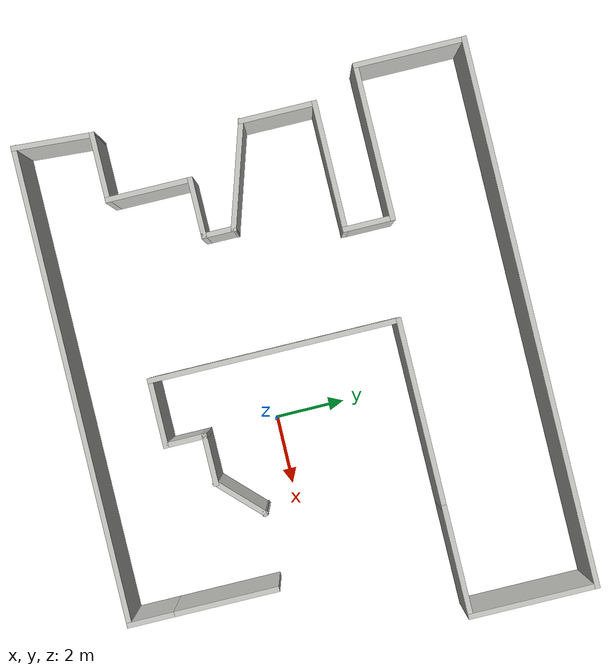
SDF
<?xml version='1.0'?>
<sdf version='1.7'>
  <model name='my_own_map_v3'>
    <pose>-1.27246 1.16254 0 0 -0 0</pose>
    <link name='Wall_0'>
      <collision name='Wall_0_Collision'>
        <geometry>
          <box>
            <size>1.5 0.15 2.5</size>
          </box>
        </geometry>
        <pose>0 0 1.25 0 -0 0</pose>
      </collision>
      <visual name='Wall_0_Visual'>
        <pose>0 0 1.25 0 -0 0</pose>
        <geometry>
          <box>
            <size>1.5 0.15 2.5</size>
          </box>
        </geometry>
        <material>
          <script>
            <uri>file://media/materials/scripts/gazebo.material</uri>
            <name>Gazebo/CeilingTiled</name>
          </script>
          <ambient>1 1 1 1</ambient>
        </material>
        <meta>
          <layer>0</layer>
        </meta>
      </visual>
      <pose>1.87499 -3.167 0 0 -0 0</pose>
    </link>
    <link name='Wall_12'>
      <collision name='Wall_12_Collision'>
        <geometry>
          <box>
            <size>15.75 0.15 2.5</size>
          </box>
        </geometry>
        <pose>0 0 1.25 0 -0 0</pose>
      </collision>
      <visual name='Wall_12_Visual'>
        <pose>0 0 1.25 0 -0 0</pose>
        <geometry>
          <box>
            <size>15.75 0.15 2.5</size>
          </box>
        </geometry>
        <material>
          <script>
            <uri>file://media/materials/scripts/gazebo.material</uri>
            <name>Gazebo/CeilingTiled</name>
          </script>
          <ambient>1 1 1 1</ambient>
        </material>
        <meta>
          <layer>0</layer>
        </meta>
      </visual>
      <pose>0.002464 6.42746 0 0 -0 0</pose>
    </link>
    <link name='Wall_13'>
      <collision name='Wall_13_Collision'>
        <geometry>
          <box>
            <size>3.75 0.15 2.5</size>
          </box>
        </geometry>
        <pose>0 0 1.25 0 -0 0</pose>
      </collision>
      <visual name='Wall_13_Visual'>
        <pose>0 0 1.25 0 -0 0</pose>
        <geometry>
          <box>
            <size>3.75 0.15 2.5</size>
          </box>
        </geometry>
        <material>
          <script>
            <uri>file://media/materials/scripts/gazebo.material</uri>
            <name>Gazebo/CeilingTiled</name>
          </script>
          <ambient>1 1 1 1</ambient>
        </material>
        <meta>
          <layer>0</layer>
        </meta>
      </visual>
      <pose>7.80246 4.62746 0 0 -0 -1.5708</pose>
    </link>
    <link name='Wall_14'>
      <collision name='Wall_14_Collision'>
        <geometry>
          <box>
            <size>3.25 0.15 2.5</size>
          </box>
        </geometry>
        <pose>0 0 1.25 0 -0 0</pose>
      </collision>
      <visual name='Wall_14_Visual'>
        <pose>0 0 1.25 0 -0 0</pose>
        <geometry>
          <box>
            <size>3.25 0.15 2.5</size>
          </box>
        </geometry>
        <material>
          <script>
            <uri>file://media/materials/scripts/gazebo.material</uri>
            <name>Gazebo/CeilingTiled</name>
          </script>
          <ambient>1 1 1 1</ambient>
        </material>
        <meta>
          <layer>0</layer>
        </meta>
      </visual>
      <pose>6.25246 2.82746 0 0 -0 3.14159</pose>
    </link>
    <link name='Wall_15'>
      <collision name='Wall_15_Collision'>
        <geometry>
          <box>
            <size>5.5 0.15 2.5</size>
          </box>
        </geometry>
        <pose>0 0 1.25 0 -0 0</pose>
      </collision>
      <visual name='Wall_15_Visual'>
        <pose>0 0 1.25 0 -0 0</pose>
        <geometry>
          <box>
            <size>5.5 0.15 2.5</size>
          </box>
        </geometry>
        <material>
          <script>
            <uri>file://media/materials/scripts/gazebo.material</uri>
            <name>Gazebo/CeilingTiled</name>
          </script>
          <ambient>1 1 1 1</ambient>
        </material>
        <meta>
          <layer>0</layer>
        </meta>
      </visual>
      <pose>2.02746 2.82746 0 0 -0 3.14159</pose>
    </link>
    <link name='Wall_16'>
      <collision name='Wall_16_Collision'>
        <geometry>
          <box>
            <size>7.25 0.15 2.5</size>
          </box>
        </geometry>
        <pose>0 0 1.25 0 -0 0</pose>
      </collision>
      <visual name='Wall_16_Visual'>
        <pose>0 0 1.25 0 -0 0</pose>
        <geometry>
          <box>
            <size>7.25 0.15 2.5</size>
          </box>
        </geometry>
        <material>
          <script>
            <uri>file://media/materials/scripts/gazebo.material</uri>
            <name>Gazebo/CeilingTiled</name>
          </script>
          <ambient>1 1 1 1</ambient>
        </material>
        <meta>
          <layer>0</layer>
        </meta>
      </visual>
      <pose>-0.647536 -0.722536 0 0 -0 -1.5708</pose>
    </link>
    <link name='Wall_17'>
      <collision name='Wall_17_Collision'>
        <geometry>
          <box>
            <size>2 0.15 2.5</size>
          </box>
        </geometry>
        <pose>0 0 1.25 0 -0 0</pose>
      </collision>
      <visual name='Wall_17_Visual'>
        <pose>0 0 1.25 0 -0 0</pose>
        <geometry>
          <box>
            <size>2 0.15 2.5</size>
          </box>
        </geometry>
        <material>
          <script>
            <uri>file://media/materials/scripts/gazebo.material</uri>
            <name>Gazebo/CeilingTiled</name>
          </script>
          <ambient>1 1 1 1</ambient>
        </material>
        <meta>
          <layer>0</layer>
        </meta>
      </visual>
      <pose>0.277464 -4.27254 0 0 -0 0</pose>
    </link>
    <link name='Wall_18'>
      <collision name='Wall_18_Collision'>
        <geometry>
          <box>
            <size>1.25617 0.15 2.5</size>
          </box>
        </geometry>
        <pose>0 0 1.25 0 -0 0</pose>
      </collision>
      <visual name='Wall_18_Visual'>
        <pose>0 0 1.25 0 -0 0</pose>
        <geometry>
          <box>
            <size>1.25617 0.15 2.5</size>
          </box>
        </geometry>
        <material>
          <script>
            <uri>file://media/materials/scripts/gazebo.material</uri>
            <name>Gazebo/CeilingTiled</name>
          </script>
          <ambient>1 1 1 1</ambient>
        </material>
        <meta>
          <layer>0</layer>
        </meta>
      </visual>
      <pose>1.20123 -3.71977 0 0 -0 1.57303</pose>
    </link>
    <link name='Wall_2'>
      <collision name='Wall_2_Collision'>
        <geometry>
          <box>
            <size>1.75 0.15 2.5</size>
          </box>
        </geometry>
        <pose>0 0 1.25 0 -0 0</pose>
      </collision>
      <visual name='Wall_2_Visual'>
        <pose>0 0 1.25 0 -0 0</pose>
        <geometry>
          <box>
            <size>1.75 0.15 2.5</size>
          </box>
        </geometry>
        <material>
          <script>
            <uri>file://media/materials/scripts/gazebo.material</uri>
            <name>Gazebo/CeilingTiled</name>
          </script>
          <ambient>1 1 1 1</ambient>
        </material>
        <meta>
          <layer>0</layer>
        </meta>
      </visual>
      <pose>3.11568 -2.60131 0 0 -0 0.785398</pose>
    </link>
    <link name='Wall_20'>
      <collision name='Wall_20_Collision'>
        <geometry>
          <box>
            <size>3.25 0.15 2.5</size>
          </box>
        </geometry>
        <pose>0 0 1.25 0 -0 0</pose>
      </collision>
      <visual name='Wall_20_Visual'>
        <pose>0 0 1.25 0 -0 0</pose>
        <geometry>
          <box>
            <size>3.25 0.15 2.5</size>
          </box>
        </geometry>
        <material>
          <script>
            <uri>file://media/materials/scripts/gazebo.material</uri>
            <name>Gazebo/CeilingTiled</name>
          </script>
          <ambient>1 1 1 1</ambient>
        </material>
        <meta>
          <layer>0</layer>
        </meta>
      </visual>
      <pose>-7.79754 4.87746 0 0 -0 -1.5708</pose>
    </link>
    <link name='Wall_21'>
      <collision name='Wall_21_Collision'>
        <geometry>
          <box>
            <size>4.5 0.15 2.5</size>
          </box>
        </geometry>
        <pose>0 0 1.25 0 -0 0</pose>
      </collision>
      <visual name='Wall_21_Visual'>
        <pose>0 0 1.25 0 -0 0</pose>
        <geometry>
          <box>
            <size>4.5 0.15 2.5</size>
          </box>
        </geometry>
        <material>
          <script>
            <uri>file://media/materials/scripts/gazebo.material</uri>
            <name>Gazebo/CeilingTiled</name>
          </script>
          <ambient>1 1 1 1</ambient>
        </material>
        <meta>
          <layer>0</layer>
        </meta>
      </visual>
      <pose>-5.62254 3.32746 0 0 -0 0</pose>
    </link>
    <link name='Wall_23'>
      <collision name='Wall_23_Collision'>
        <geometry>
          <box>
            <size>1 0.15 2.5</size>
          </box>
        </geometry>
        <pose>0 0 1.25 0 -0 0</pose>
      </collision>
      <visual name='Wall_23_Visual'>
        <pose>0 0 1.25 0 -0 0</pose>
        <geometry>
          <box>
            <size>1 0.15 2.5</size>
          </box>
        </geometry>
        <material>
          <script>
            <uri>file://media/materials/scripts/gazebo.material</uri>
            <name>Gazebo/CeilingTiled</name>
          </script>
          <ambient>1 1 1 1</ambient>
        </material>
        <meta>
          <layer>0</layer>
        </meta>
      </visual>
      <pose>-4.19754 -1.44754 0 0 -0 -1.5708</pose>
    </link>
    <link name='Wall_24'>
      <collision name='Wall_24_Collision'>
        <geometry>
          <box>
            <size>1.75 0.15 2.5</size>
          </box>
        </geometry>
        <pose>0 0 1.25 0 -0 0</pose>
      </collision>
      <visual name='Wall_24_Visual'>
        <pose>0 0 1.25 0 -0 0</pose>
        <geometry>
          <box>
            <size>1.75 0.15 2.5</size>
          </box>
        </geometry>
        <material>
          <script>
            <uri>file://media/materials/scripts/gazebo.material</uri>
            <name>Gazebo/CeilingTiled</name>
          </script>
          <ambient>1 1 1 1</ambient>
        </material>
        <meta>
          <layer>0</layer>
        </meta>
      </visual>
      <pose>-4.99754 -1.87254 0 0 -0 3.14159</pose>
    </link>
    <link name='Wall_25'>
      <collision name='Wall_25_Collision'>
        <geometry>
          <box>
            <size>2.5 0.15 2.5</size>
          </box>
        </geometry>
        <pose>0 0 1.25 0 -0 0</pose>
      </collision>
      <visual name='Wall_25_Visual'>
        <pose>0 0 1.25 0 -0 0</pose>
        <geometry>
          <box>
            <size>2.5 0.15 2.5</size>
          </box>
        </geometry>
        <material>
          <script>
            <uri>file://media/materials/scripts/gazebo.material</uri>
            <name>Gazebo/CeilingTiled</name>
          </script>
          <ambient>1 1 1 1</ambient>
        </material>
        <meta>
          <layer>0</layer>
        </meta>
      </visual>
      <pose>-5.79754 -3.04754 0 0 -0 -1.5708</pose>
    </link>
    <link name='Wall_26'>
      <collision name='Wall_26_Collision'>
        <geometry>
          <box>
            <size>2 0.15 2.5</size>
          </box>
        </geometry>
        <pose>0 0 1.25 0 -0 0</pose>
      </collision>
      <visual name='Wall_26_Visual'>
        <pose>0 0 1.25 0 -0 0</pose>
        <geometry>
          <box>
            <size>2 0.15 2.5</size>
          </box>
        </geometry>
        <material>
          <script>
            <uri>file://media/materials/scripts/gazebo.material</uri>
            <name>Gazebo/CeilingTiled</name>
          </script>
          <ambient>1 1 1 1</ambient>
        </material>
        <meta>
          <layer>0</layer>
        </meta>
      </visual>
      <pose>-6.72254 -4.22254 0 0 -0 3.14159</pose>
    </link>
    <link name='Wall_27'>
      <collision name='Wall_27_Collision'>
        <geometry>
          <box>
            <size>2.35511 0.15 2.5</size>
          </box>
        </geometry>
        <pose>0 0 1.25 0 -0 0</pose>
      </collision>
      <visual name='Wall_27_Visual'>
        <pose>0 0 1.25 0 -0 0</pose>
        <geometry>
          <box>
            <size>2.35511 0.15 2.5</size>
          </box>
        </geometry>
        <material>
          <script>
            <uri>file://media/materials/scripts/gazebo.material</uri>
            <name>Gazebo/CeilingTiled</name>
          </script>
          <ambient>1 1 1 1</ambient>
        </material>
        <meta>
          <layer>0</layer>
        </meta>
      </visual>
      <pose>-7.72254 -5.32254 0 0 -0 -1.63887</pose>
    </link>
    <link name='Wall_29'>
      <collision name='Wall_29_Collision'>
        <geometry>
          <box>
            <size>1.5 0.15 2.5</size>
          </box>
        </geometry>
        <pose>0 0 1.25 0 -0 0</pose>
      </collision>
      <visual name='Wall_29_Visual'>
        <pose>0 0 1.25 0 -0 0</pose>
        <geometry>
          <box>
            <size>1.5 0.15 2.5</size>
          </box>
        </geometry>
        <material>
          <script>
            <uri>file://media/materials/scripts/gazebo.material</uri>
            <name>Gazebo/CeilingTiled</name>
          </script>
          <ambient>1 1 1 1</ambient>
        </material>
        <meta>
          <layer>0</layer>
        </meta>
      </visual>
      <pose>-3.44754 2.65246 0 0 -0 -1.5708</pose>
    </link>
    <link name='Wall_3'>
      <collision name='Wall_3_Collision'>
        <geometry>
          <box>
            <size>0.15 0.15 2.5</size>
          </box>
        </geometry>
        <pose>0 0 1.25 0 -0 0</pose>
      </collision>
      <visual name='Wall_3_Visual'>
        <pose>0 0 1.25 0 -0 0</pose>
        <geometry>
          <box>
            <size>0.15 0.15 2.5</size>
          </box>
        </geometry>
        <material>
          <script>
            <uri>file://media/materials/scripts/gazebo.material</uri>
            <name>Gazebo/Grey</name>
          </script>
          <ambient>1 1 1 1</ambient>
        </material>
        <meta>
          <layer>0</layer>
        </meta>
      </visual>
      <pose>3.68136 -2.03563 0 0 -0 0</pose>
    </link>
    <link name='Wall_30'>
      <collision name='Wall_30_Collision'>
        <geometry>
          <box>
            <size>3.75 0.15 2.5</size>
          </box>
        </geometry>
        <pose>0 0 1.25 0 -0 0</pose>
      </collision>
      <visual name='Wall_30_Visual'>
        <pose>0 0 1.25 0 -0 0</pose>
        <geometry>
          <box>
            <size>3.75 0.15 2.5</size>
          </box>
        </geometry>
        <material>
          <script>
            <uri>file://media/materials/scripts/gazebo.material</uri>
            <name>Gazebo/CeilingTiled</name>
          </script>
          <ambient>1 1 1 1</ambient>
        </material>
        <meta>
          <layer>0</layer>
        </meta>
      </visual>
      <pose>-5.24754 1.97746 0 0 -0 3.14159</pose>
    </link>
    <link name='Wall_31'>
      <collision name='Wall_31_Collision'>
        <geometry>
          <box>
            <size>2.25 0.15 2.5</size>
          </box>
        </geometry>
        <pose>0 0 1.25 0 -0 0</pose>
      </collision>
      <visual name='Wall_31_Visual'>
        <pose>0 0 1.25 0 -0 0</pose>
        <geometry>
          <box>
            <size>2.25 0.15 2.5</size>
          </box>
        </geometry>
        <material>
          <script>
            <uri>file://media/materials/scripts/gazebo.material</uri>
            <name>Gazebo/CeilingTiled</name>
          </script>
          <ambient>1 1 1 1</ambient>
        </material>
        <meta>
          <layer>0</layer>
        </meta>
      </visual>
      <pose>-7.04754 0.927464 0 0 -0 -1.5708</pose>
    </link>
    <link name='Wall_32'>
      <collision name='Wall_32_Collision'>
        <geometry>
          <box>
            <size>3.13873 0.15 2.5</size>
          </box>
        </geometry>
        <pose>0 0 1.25 0 -0 0</pose>
      </collision>
      <visual name='Wall_32_Visual'>
        <pose>0 0 1.25 0 -0 0</pose>
        <geometry>
          <box>
            <size>3.13873 0.15 2.5</size>
          </box>
        </geometry>
        <material>
          <script>
            <uri>file://media/materials/scripts/gazebo.material</uri>
            <name>Gazebo/CeilingTiled</name>
          </script>
          <ambient>1 1 1 1</ambient>
        </material>
        <meta>
          <layer>0</layer>
        </meta>
      </visual>
      <pose>-5.62254 -0.572536 0 0 -0 -0.305879</pose>
    </link>
    <link name='Wall_5'>
      <collision name='Wall_5_Collision'>
        <geometry>
          <box>
            <size>3 0.15 2.5</size>
          </box>
        </geometry>
        <pose>0 0 1.25 0 -0 0</pose>
      </collision>
      <visual name='Wall_5_Visual'>
        <pose>0 0 1.25 0 -0 0</pose>
        <geometry>
          <box>
            <size>3 0.15 2.5</size>
          </box>
        </geometry>
        <material>
          <script>
            <uri>file://media/materials/scripts/gazebo.material</uri>
            <name>Gazebo/CeilingTiled</name>
          </script>
          <ambient>1 1 1 1</ambient>
        </material>
        <meta>
          <layer>0</layer>
        </meta>
      </visual>
      <pose>5.80246 -3.64754 0 0 -0 -1.5708</pose>
    </link>
    <link name='Wall_7'>
      <collision name='Wall_7_Collision'>
        <geometry>
          <box>
            <size>1.5 0.15 2.5</size>
          </box>
        </geometry>
        <pose>0 0 1.25 0 -0 0</pose>
      </collision>
      <visual name='Wall_7_Visual'>
        <pose>0 0 1.25 0 -0 0</pose>
        <geometry>
          <box>
            <size>1.5 0.15 2.5</size>
          </box>
        </geometry>
        <material>
          <script>
            <uri>file://media/materials/scripts/gazebo.material</uri>
            <name>Gazebo/CeilingTiled</name>
          </script>
          <ambient>1 1 1 1</ambient>
        </material>
        <meta>
          <layer>0</layer>
        </meta>
      </visual>
      <pose>5.80246 -5.74754 0 0 -0 -1.5708</pose>
    </link>
    <link name='Wall_8'>
      <collision name='Wall_8_Collision'>
        <geometry>
          <box>
            <size>13.75 0.15 2.5</size>
          </box>
        </geometry>
        <pose>0 0 1.25 0 -0 0</pose>
      </collision>
      <visual name='Wall_8_Visual'>
        <pose>0 0 1.25 0 -0 0</pose>
        <geometry>
          <box>
            <size>13.75 0.15 2.5</size>
          </box>
        </geometry>
        <material>
          <script>
            <uri>file://media/materials/scripts/gazebo.material</uri>
            <name>Gazebo/CeilingTiled</name>
          </script>
          <ambient>1 1 1 1</ambient>
        </material>
        <meta>
          <layer>0</layer>
        </meta>
      </visual>
      <pose>-0.997536 -6.42254 0 0 -0 3.14159</pose>
    </link>
    <static>1</static>
  </model>
</sdf>
